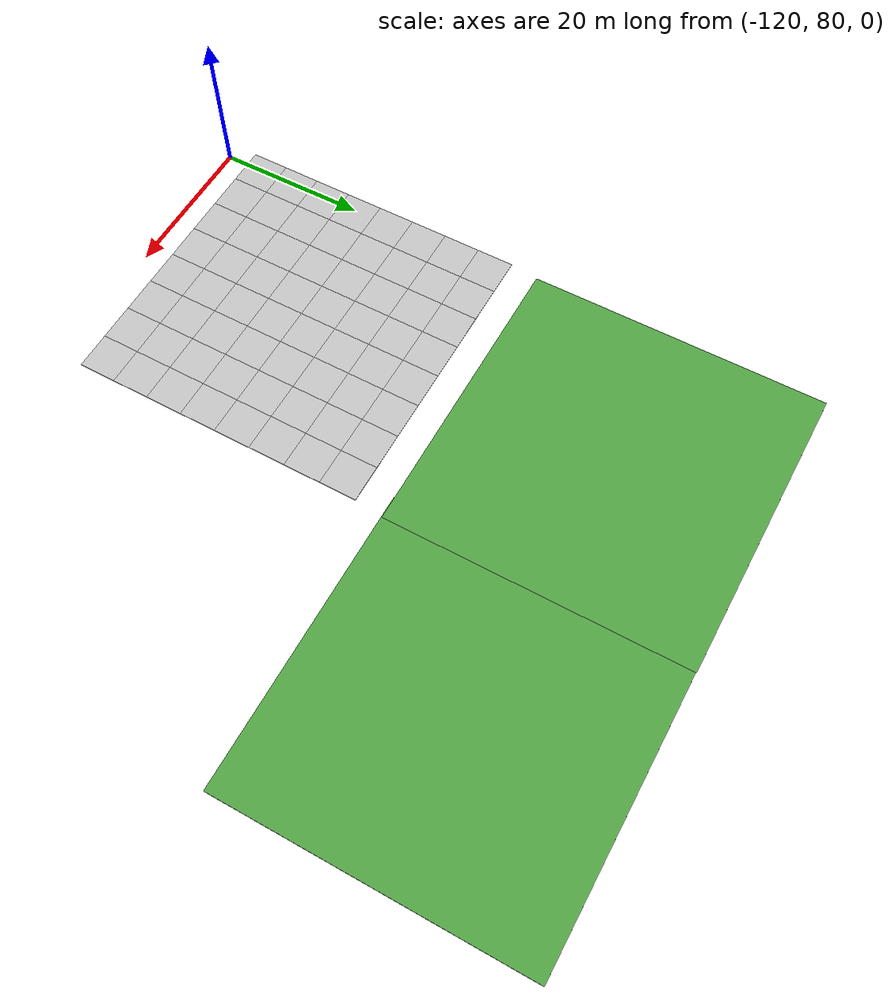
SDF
<sdf version="1.7">
 <world name="default">
  <model name="mud_plane_40x40_15">
   <model name="mud_plane_20x20">
    <model name="mud_plane">
     <static>1</static>
     <link name="link">
      <collision name="collision"><geometry><box><size>10 10 0.1</size></box></geometry></collision>
      <visual name="visual_1">
       <pose>-2.5 2.5 -0.05 0 -0 0</pose>
       <cast_shadows>0</cast_shadows>
       <geometry><box><size>5 5 0.1</size></box></geometry>
       <material>
        <script>
         <uri>model://mud_plane/materials/scripts</uri>
         <uri>model://mud_plane/materials/textures</uri>
         <name>vrc/mud</name>
        </script>
       </material>
      </visual>
      <visual name="visual_2">
       <pose>2.5 2.5 -0.05 0 -0 0</pose>
       <cast_shadows>0</cast_shadows>
       <geometry><box><size>5 5 0.1</size></box></geometry>
       <material>
        <script>
         <uri>model://mud_plane/materials/scripts</uri>
         <uri>model://mud_plane/materials/textures</uri>
         <name>vrc/mud</name>
        </script>
       </material>
      </visual>
      <visual name="visual_3">
       <pose>2.5 -2.5 -0.05 0 -0 0</pose>
       <cast_shadows>0</cast_shadows>
       <geometry><box><size>5 5 0.1</size></box></geometry>
       <material>
        <script>
         <uri>model://mud_plane/materials/scripts</uri>
         <uri>model://mud_plane/materials/textures</uri>
         <name>vrc/mud</name>
        </script>
       </material>
      </visual>
      <visual name="visual_4">
       <pose>-2.5 -2.5 -0.05 0 -0 0</pose>
       <cast_shadows>0</cast_shadows>
       <geometry><box><size>5 5 0.1</size></box></geometry>
       <material>
        <script>
         <uri>model://mud_plane/materials/scripts</uri>
         <uri>model://mud_plane/materials/textures</uri>
         <name>vrc/mud</name>
        </script>
       </material>
      </visual>
     </link>
     <pose>-4.99986 -4.99991 0 0 -0 0</pose>
    </model>
    <model name="mud_plane_0">
     <static>1</static>
     <link name="link">
      <collision name="collision"><geometry><box><size>10 10 0.1</size></box></geometry></collision>
      <visual name="visual_1">
       <pose>-2.5 2.5 -0.05 0 -0 0</pose>
       <cast_shadows>0</cast_shadows>
       <geometry><box><size>5 5 0.1</size></box></geometry>
       <material>
        <script>
         <uri>model://mud_plane/materials/scripts</uri>
         <uri>model://mud_plane/materials/textures</uri>
         <name>vrc/mud</name>
        </script>
       </material>
      </visual>
      <visual name="visual_2">
       <pose>2.5 2.5 -0.05 0 -0 0</pose>
       <cast_shadows>0</cast_shadows>
       <geometry><box><size>5 5 0.1</size></box></geometry>
       <material>
        <script>
         <uri>model://mud_plane/materials/scripts</uri>
         <uri>model://mud_plane/materials/textures</uri>
         <name>vrc/mud</name>
        </script>
       </material>
      </visual>
      <visual name="visual_3">
       <pose>2.5 -2.5 -0.05 0 -0 0</pose>
       <cast_shadows>0</cast_shadows>
       <geometry><box><size>5 5 0.1</size></box></geometry>
       <material>
        <script>
         <uri>model://mud_plane/materials/scripts</uri>
         <uri>model://mud_plane/materials/textures</uri>
         <name>vrc/mud</name>
        </script>
       </material>
      </visual>
      <visual name="visual_4">
       <pose>-2.5 -2.5 -0.05 0 -0 0</pose>
       <cast_shadows>0</cast_shadows>
       <geometry><box><size>5 5 0.1</size></box></geometry>
       <material>
        <script>
         <uri>model://mud_plane/materials/scripts</uri>
         <uri>model://mud_plane/materials/textures</uri>
         <name>vrc/mud</name>
        </script>
       </material>
      </visual>
     </link>
     <pose>-4.99946 4.99954 0 0 -0 0</pose>
    </model>
    <model name="mud_plane_1">
     <static>1</static>
     <link name="link">
      <collision name="collision"><geometry><box><size>10 10 0.1</size></box></geometry></collision>
      <visual name="visual_1">
       <pose>-2.5 2.5 -0.05 0 -0 0</pose>
       <cast_shadows>0</cast_shadows>
       <geometry><box><size>5 5 0.1</size></box></geometry>
       <material>
        <script>
         <uri>model://mud_plane/materials/scripts</uri>
         <uri>model://mud_plane/materials/textures</uri>
         <name>vrc/mud</name>
        </script>
       </material>
      </visual>
      <visual name="visual_2">
       <pose>2.5 2.5 -0.05 0 -0 0</pose>
       <cast_shadows>0</cast_shadows>
       <geometry><box><size>5 5 0.1</size></box></geometry>
       <material>
        <script>
         <uri>model://mud_plane/materials/scripts</uri>
         <uri>model://mud_plane/materials/textures</uri>
         <name>vrc/mud</name>
        </script>
       </material>
      </visual>
      <visual name="visual_3">
       <pose>2.5 -2.5 -0.05 0 -0 0</pose>
       <cast_shadows>0</cast_shadows>
       <geometry><box><size>5 5 0.1</size></box></geometry>
       <material>
        <script>
         <uri>model://mud_plane/materials/scripts</uri>
         <uri>model://mud_plane/materials/textures</uri>
         <name>vrc/mud</name>
        </script>
       </material>
      </visual>
      <visual name="visual_4">
       <pose>-2.5 -2.5 -0.05 0 -0 0</pose>
       <cast_shadows>0</cast_shadows>
       <geometry><box><size>5 5 0.1</size></box></geometry>
       <material>
        <script>
         <uri>model://mud_plane/materials/scripts</uri>
         <uri>model://mud_plane/materials/textures</uri>
         <name>vrc/mud</name>
        </script>
       </material>
      </visual>
     </link>
     <pose>4.99964 -4.99949 0 0 -0 0</pose>
    </model>
    <model name="mud_plane_2">
     <static>1</static>
     <link name="link">
      <collision name="collision"><geometry><box><size>10 10 0.1</size></box></geometry></collision>
      <visual name="visual_1">
       <pose>-2.5 2.5 -0.05 0 -0 0</pose>
       <cast_shadows>0</cast_shadows>
       <geometry><box><size>5 5 0.1</size></box></geometry>
       <material>
        <script>
         <uri>model://mud_plane/materials/scripts</uri>
         <uri>model://mud_plane/materials/textures</uri>
         <name>vrc/mud</name>
        </script>
       </material>
      </visual>
      <visual name="visual_2">
       <pose>2.5 2.5 -0.05 0 -0 0</pose>
       <cast_shadows>0</cast_shadows>
       <geometry><box><size>5 5 0.1</size></box></geometry>
       <material>
        <script>
         <uri>model://mud_plane/materials/scripts</uri>
         <uri>model://mud_plane/materials/textures</uri>
         <name>vrc/mud</name>
        </script>
       </material>
      </visual>
      <visual name="visual_3">
       <pose>2.5 -2.5 -0.05 0 -0 0</pose>
       <cast_shadows>0</cast_shadows>
       <geometry><box><size>5 5 0.1</size></box></geometry>
       <material>
        <script>
         <uri>model://mud_plane/materials/scripts</uri>
         <uri>model://mud_plane/materials/textures</uri>
         <name>vrc/mud</name>
        </script>
       </material>
      </visual>
      <visual name="visual_4">
       <pose>-2.5 -2.5 -0.05 0 -0 0</pose>
       <cast_shadows>0</cast_shadows>
       <geometry><box><size>5 5 0.1</size></box></geometry>
       <material>
        <script>
         <uri>model://mud_plane/materials/scripts</uri>
         <uri>model://mud_plane/materials/textures</uri>
         <name>vrc/mud</name>
        </script>
       </material>
      </visual>
     </link>
     <pose>4.99967 4.99986 0 0 -0 0</pose>
    </model>
    <static>0</static>
    <pose>-9.99895 9.99843 0 0 -0 0</pose>
   </model>
   <model name="mud_plane_20x20_0">
    <model name="mud_plane">
     <static>1</static>
     <link name="link">
      <collision name="collision"><geometry><box><size>10 10 0.1</size></box></geometry></collision>
      <visual name="visual_1">
       <pose>-2.5 2.5 -0.05 0 -0 0</pose>
       <cast_shadows>0</cast_shadows>
       <geometry><box><size>5 5 0.1</size></box></geometry>
       <material>
        <script>
         <uri>model://mud_plane/materials/scripts</uri>
         <uri>model://mud_plane/materials/textures</uri>
         <name>vrc/mud</name>
        </script>
       </material>
      </visual>
      <visual name="visual_2">
       <pose>2.5 2.5 -0.05 0 -0 0</pose>
       <cast_shadows>0</cast_shadows>
       <geometry><box><size>5 5 0.1</size></box></geometry>
       <material>
        <script>
         <uri>model://mud_plane/materials/scripts</uri>
         <uri>model://mud_plane/materials/textures</uri>
         <name>vrc/mud</name>
        </script>
       </material>
      </visual>
      <visual name="visual_3">
       <pose>2.5 -2.5 -0.05 0 -0 0</pose>
       <cast_shadows>0</cast_shadows>
       <geometry><box><size>5 5 0.1</size></box></geometry>
       <material>
        <script>
         <uri>model://mud_plane/materials/scripts</uri>
         <uri>model://mud_plane/materials/textures</uri>
         <name>vrc/mud</name>
        </script>
       </material>
      </visual>
      <visual name="visual_4">
       <pose>-2.5 -2.5 -0.05 0 -0 0</pose>
       <cast_shadows>0</cast_shadows>
       <geometry><box><size>5 5 0.1</size></box></geometry>
       <material>
        <script>
         <uri>model://mud_plane/materials/scripts</uri>
         <uri>model://mud_plane/materials/textures</uri>
         <name>vrc/mud</name>
        </script>
       </material>
      </visual>
     </link>
     <pose>-4.99986 -4.99991 0 0 -0 0</pose>
    </model>
    <model name="mud_plane_0">
     <static>1</static>
     <link name="link">
      <collision name="collision"><geometry><box><size>10 10 0.1</size></box></geometry></collision>
      <visual name="visual_1">
       <pose>-2.5 2.5 -0.05 0 -0 0</pose>
       <cast_shadows>0</cast_shadows>
       <geometry><box><size>5 5 0.1</size></box></geometry>
       <material>
        <script>
         <uri>model://mud_plane/materials/scripts</uri>
         <uri>model://mud_plane/materials/textures</uri>
         <name>vrc/mud</name>
        </script>
       </material>
      </visual>
      <visual name="visual_2">
       <pose>2.5 2.5 -0.05 0 -0 0</pose>
       <cast_shadows>0</cast_shadows>
       <geometry><box><size>5 5 0.1</size></box></geometry>
       <material>
        <script>
         <uri>model://mud_plane/materials/scripts</uri>
         <uri>model://mud_plane/materials/textures</uri>
         <name>vrc/mud</name>
        </script>
       </material>
      </visual>
      <visual name="visual_3">
       <pose>2.5 -2.5 -0.05 0 -0 0</pose>
       <cast_shadows>0</cast_shadows>
       <geometry><box><size>5 5 0.1</size></box></geometry>
       <material>
        <script>
         <uri>model://mud_plane/materials/scripts</uri>
         <uri>model://mud_plane/materials/textures</uri>
         <name>vrc/mud</name>
        </script>
       </material>
      </visual>
      <visual name="visual_4">
       <pose>-2.5 -2.5 -0.05 0 -0 0</pose>
       <cast_shadows>0</cast_shadows>
       <geometry><box><size>5 5 0.1</size></box></geometry>
       <material>
        <script>
         <uri>model://mud_plane/materials/scripts</uri>
         <uri>model://mud_plane/materials/textures</uri>
         <name>vrc/mud</name>
        </script>
       </material>
      </visual>
     </link>
     <pose>-4.99946 4.99954 0 0 -0 0</pose>
    </model>
    <model name="mud_plane_1">
     <static>1</static>
     <link name="link">
      <collision name="collision"><geometry><box><size>10 10 0.1</size></box></geometry></collision>
      <visual name="visual_1">
       <pose>-2.5 2.5 -0.05 0 -0 0</pose>
       <cast_shadows>0</cast_shadows>
       <geometry><box><size>5 5 0.1</size></box></geometry>
       <material>
        <script>
         <uri>model://mud_plane/materials/scripts</uri>
         <uri>model://mud_plane/materials/textures</uri>
         <name>vrc/mud</name>
        </script>
       </material>
      </visual>
      <visual name="visual_2">
       <pose>2.5 2.5 -0.05 0 -0 0</pose>
       <cast_shadows>0</cast_shadows>
       <geometry><box><size>5 5 0.1</size></box></geometry>
       <material>
        <script>
         <uri>model://mud_plane/materials/scripts</uri>
         <uri>model://mud_plane/materials/textures</uri>
         <name>vrc/mud</name>
        </script>
       </material>
      </visual>
      <visual name="visual_3">
       <pose>2.5 -2.5 -0.05 0 -0 0</pose>
       <cast_shadows>0</cast_shadows>
       <geometry><box><size>5 5 0.1</size></box></geometry>
       <material>
        <script>
         <uri>model://mud_plane/materials/scripts</uri>
         <uri>model://mud_plane/materials/textures</uri>
         <name>vrc/mud</name>
        </script>
       </material>
      </visual>
      <visual name="visual_4">
       <pose>-2.5 -2.5 -0.05 0 -0 0</pose>
       <cast_shadows>0</cast_shadows>
       <geometry><box><size>5 5 0.1</size></box></geometry>
       <material>
        <script>
         <uri>model://mud_plane/materials/scripts</uri>
         <uri>model://mud_plane/materials/textures</uri>
         <name>vrc/mud</name>
        </script>
       </material>
      </visual>
     </link>
     <pose>4.99964 -4.99949 0 0 -0 0</pose>
    </model>
    <model name="mud_plane_2">
     <static>1</static>
     <link name="link">
      <collision name="collision"><geometry><box><size>10 10 0.1</size></box></geometry></collision>
      <visual name="visual_1">
       <pose>-2.5 2.5 -0.05 0 -0 0</pose>
       <cast_shadows>0</cast_shadows>
       <geometry><box><size>5 5 0.1</size></box></geometry>
       <material>
        <script>
         <uri>model://mud_plane/materials/scripts</uri>
         <uri>model://mud_plane/materials/textures</uri>
         <name>vrc/mud</name>
        </script>
       </material>
      </visual>
      <visual name="visual_2">
       <pose>2.5 2.5 -0.05 0 -0 0</pose>
       <cast_shadows>0</cast_shadows>
       <geometry><box><size>5 5 0.1</size></box></geometry>
       <material>
        <script>
         <uri>model://mud_plane/materials/scripts</uri>
         <uri>model://mud_plane/materials/textures</uri>
         <name>vrc/mud</name>
        </script>
       </material>
      </visual>
      <visual name="visual_3">
       <pose>2.5 -2.5 -0.05 0 -0 0</pose>
       <cast_shadows>0</cast_shadows>
       <geometry><box><size>5 5 0.1</size></box></geometry>
       <material>
        <script>
         <uri>model://mud_plane/materials/scripts</uri>
         <uri>model://mud_plane/materials/textures</uri>
         <name>vrc/mud</name>
        </script>
       </material>
      </visual>
      <visual name="visual_4">
       <pose>-2.5 -2.5 -0.05 0 -0 0</pose>
       <cast_shadows>0</cast_shadows>
       <geometry><box><size>5 5 0.1</size></box></geometry>
       <material>
        <script>
         <uri>model://mud_plane/materials/scripts</uri>
         <uri>model://mud_plane/materials/textures</uri>
         <name>vrc/mud</name>
        </script>
       </material>
      </visual>
     </link>
     <pose>4.99967 4.99986 0 0 -0 0</pose>
    </model>
    <static>0</static>
    <pose>9.99933 9.9997 0 0 -0 0</pose>
   </model>
   <model name="mud_plane_20x20_1">
    <model name="mud_plane">
     <static>1</static>
     <link name="link">
      <collision name="collision"><geometry><box><size>10 10 0.1</size></box></geometry></collision>
      <visual name="visual_1">
       <pose>-2.5 2.5 -0.05 0 -0 0</pose>
       <cast_shadows>0</cast_shadows>
       <geometry><box><size>5 5 0.1</size></box></geometry>
       <material>
        <script>
         <uri>model://mud_plane/materials/scripts</uri>
         <uri>model://mud_plane/materials/textures</uri>
         <name>vrc/mud</name>
        </script>
       </material>
      </visual>
      <visual name="visual_2">
       <pose>2.5 2.5 -0.05 0 -0 0</pose>
       <cast_shadows>0</cast_shadows>
       <geometry><box><size>5 5 0.1</size></box></geometry>
       <material>
        <script>
         <uri>model://mud_plane/materials/scripts</uri>
         <uri>model://mud_plane/materials/textures</uri>
         <name>vrc/mud</name>
        </script>
       </material>
      </visual>
      <visual name="visual_3">
       <pose>2.5 -2.5 -0.05 0 -0 0</pose>
       <cast_shadows>0</cast_shadows>
       <geometry><box><size>5 5 0.1</size></box></geometry>
       <material>
        <script>
         <uri>model://mud_plane/materials/scripts</uri>
         <uri>model://mud_plane/materials/textures</uri>
         <name>vrc/mud</name>
        </script>
       </material>
      </visual>
      <visual name="visual_4">
       <pose>-2.5 -2.5 -0.05 0 -0 0</pose>
       <cast_shadows>0</cast_shadows>
       <geometry><box><size>5 5 0.1</size></box></geometry>
       <material>
        <script>
         <uri>model://mud_plane/materials/scripts</uri>
         <uri>model://mud_plane/materials/textures</uri>
         <name>vrc/mud</name>
        </script>
       </material>
      </visual>
     </link>
     <pose>-4.99986 -4.99991 0 0 -0 0</pose>
    </model>
    <model name="mud_plane_0">
     <static>1</static>
     <link name="link">
      <collision name="collision"><geometry><box><size>10 10 0.1</size></box></geometry></collision>
      <visual name="visual_1">
       <pose>-2.5 2.5 -0.05 0 -0 0</pose>
       <cast_shadows>0</cast_shadows>
       <geometry><box><size>5 5 0.1</size></box></geometry>
       <material>
        <script>
         <uri>model://mud_plane/materials/scripts</uri>
         <uri>model://mud_plane/materials/textures</uri>
         <name>vrc/mud</name>
        </script>
       </material>
      </visual>
      <visual name="visual_2">
       <pose>2.5 2.5 -0.05 0 -0 0</pose>
       <cast_shadows>0</cast_shadows>
       <geometry><box><size>5 5 0.1</size></box></geometry>
       <material>
        <script>
         <uri>model://mud_plane/materials/scripts</uri>
         <uri>model://mud_plane/materials/textures</uri>
         <name>vrc/mud</name>
        </script>
       </material>
      </visual>
      <visual name="visual_3">
       <pose>2.5 -2.5 -0.05 0 -0 0</pose>
       <cast_shadows>0</cast_shadows>
       <geometry><box><size>5 5 0.1</size></box></geometry>
       <material>
        <script>
         <uri>model://mud_plane/materials/scripts</uri>
         <uri>model://mud_plane/materials/textures</uri>
         <name>vrc/mud</name>
        </script>
       </material>
      </visual>
      <visual name="visual_4">
       <pose>-2.5 -2.5 -0.05 0 -0 0</pose>
       <cast_shadows>0</cast_shadows>
       <geometry><box><size>5 5 0.1</size></box></geometry>
       <material>
        <script>
         <uri>model://mud_plane/materials/scripts</uri>
         <uri>model://mud_plane/materials/textures</uri>
         <name>vrc/mud</name>
        </script>
       </material>
      </visual>
     </link>
     <pose>-4.99946 4.99954 0 0 -0 0</pose>
    </model>
    <model name="mud_plane_1">
     <static>1</static>
     <link name="link">
      <collision name="collision"><geometry><box><size>10 10 0.1</size></box></geometry></collision>
      <visual name="visual_1">
       <pose>-2.5 2.5 -0.05 0 -0 0</pose>
       <cast_shadows>0</cast_shadows>
       <geometry><box><size>5 5 0.1</size></box></geometry>
       <material>
        <script>
         <uri>model://mud_plane/materials/scripts</uri>
         <uri>model://mud_plane/materials/textures</uri>
         <name>vrc/mud</name>
        </script>
       </material>
      </visual>
      <visual name="visual_2">
       <pose>2.5 2.5 -0.05 0 -0 0</pose>
       <cast_shadows>0</cast_shadows>
       <geometry><box><size>5 5 0.1</size></box></geometry>
       <material>
        <script>
         <uri>model://mud_plane/materials/scripts</uri>
         <uri>model://mud_plane/materials/textures</uri>
         <name>vrc/mud</name>
        </script>
       </material>
      </visual>
      <visual name="visual_3">
       <pose>2.5 -2.5 -0.05 0 -0 0</pose>
       <cast_shadows>0</cast_shadows>
       <geometry><box><size>5 5 0.1</size></box></geometry>
       <material>
        <script>
         <uri>model://mud_plane/materials/scripts</uri>
         <uri>model://mud_plane/materials/textures</uri>
         <name>vrc/mud</name>
        </script>
       </material>
      </visual>
      <visual name="visual_4">
       <pose>-2.5 -2.5 -0.05 0 -0 0</pose>
       <cast_shadows>0</cast_shadows>
       <geometry><box><size>5 5 0.1</size></box></geometry>
       <material>
        <script>
         <uri>model://mud_plane/materials/scripts</uri>
         <uri>model://mud_plane/materials/textures</uri>
         <name>vrc/mud</name>
        </script>
       </material>
      </visual>
     </link>
     <pose>4.99964 -4.99949 0 0 -0 0</pose>
    </model>
    <model name="mud_plane_2">
     <static>1</static>
     <link name="link">
      <collision name="collision"><geometry><box><size>10 10 0.1</size></box></geometry></collision>
      <visual name="visual_1">
       <pose>-2.5 2.5 -0.05 0 -0 0</pose>
       <cast_shadows>0</cast_shadows>
       <geometry><box><size>5 5 0.1</size></box></geometry>
       <material>
        <script>
         <uri>model://mud_plane/materials/scripts</uri>
         <uri>model://mud_plane/materials/textures</uri>
         <name>vrc/mud</name>
        </script>
       </material>
      </visual>
      <visual name="visual_2">
       <pose>2.5 2.5 -0.05 0 -0 0</pose>
       <cast_shadows>0</cast_shadows>
       <geometry><box><size>5 5 0.1</size></box></geometry>
       <material>
        <script>
         <uri>model://mud_plane/materials/scripts</uri>
         <uri>model://mud_plane/materials/textures</uri>
         <name>vrc/mud</name>
        </script>
       </material>
      </visual>
      <visual name="visual_3">
       <pose>2.5 -2.5 -0.05 0 -0 0</pose>
       <cast_shadows>0</cast_shadows>
       <geometry><box><size>5 5 0.1</size></box></geometry>
       <material>
        <script>
         <uri>model://mud_plane/materials/scripts</uri>
         <uri>model://mud_plane/materials/textures</uri>
         <name>vrc/mud</name>
        </script>
       </material>
      </visual>
      <visual name="visual_4">
       <pose>-2.5 -2.5 -0.05 0 -0 0</pose>
       <cast_shadows>0</cast_shadows>
       <geometry><box><size>5 5 0.1</size></box></geometry>
       <material>
        <script>
         <uri>model://mud_plane/materials/scripts</uri>
         <uri>model://mud_plane/materials/textures</uri>
         <name>vrc/mud</name>
        </script>
       </material>
      </visual>
     </link>
     <pose>4.99967 4.99986 0 0 -0 0</pose>
    </model>
    <static>0</static>
    <pose>9.9993 -9.99877 0 0 -0 0</pose>
   </model>
   <model name="mud_plane_20x20_2">
    <model name="mud_plane">
     <static>1</static>
     <link name="link">
      <collision name="collision"><geometry><box><size>10 10 0.1</size></box></geometry></collision>
      <visual name="visual_1">
       <pose>-2.5 2.5 -0.05 0 -0 0</pose>
       <cast_shadows>0</cast_shadows>
       <geometry><box><size>5 5 0.1</size></box></geometry>
       <material>
        <script>
         <uri>model://mud_plane/materials/scripts</uri>
         <uri>model://mud_plane/materials/textures</uri>
         <name>vrc/mud</name>
        </script>
       </material>
      </visual>
      <visual name="visual_2">
       <pose>2.5 2.5 -0.05 0 -0 0</pose>
       <cast_shadows>0</cast_shadows>
       <geometry><box><size>5 5 0.1</size></box></geometry>
       <material>
        <script>
         <uri>model://mud_plane/materials/scripts</uri>
         <uri>model://mud_plane/materials/textures</uri>
         <name>vrc/mud</name>
        </script>
       </material>
      </visual>
      <visual name="visual_3">
       <pose>2.5 -2.5 -0.05 0 -0 0</pose>
       <cast_shadows>0</cast_shadows>
       <geometry><box><size>5 5 0.1</size></box></geometry>
       <material>
        <script>
         <uri>model://mud_plane/materials/scripts</uri>
         <uri>model://mud_plane/materials/textures</uri>
         <name>vrc/mud</name>
        </script>
       </material>
      </visual>
      <visual name="visual_4">
       <pose>-2.5 -2.5 -0.05 0 -0 0</pose>
       <cast_shadows>0</cast_shadows>
       <geometry><box><size>5 5 0.1</size></box></geometry>
       <material>
        <script>
         <uri>model://mud_plane/materials/scripts</uri>
         <uri>model://mud_plane/materials/textures</uri>
         <name>vrc/mud</name>
        </script>
       </material>
      </visual>
     </link>
     <pose>-4.99986 -4.99991 0 0 -0 0</pose>
    </model>
    <model name="mud_plane_0">
     <static>1</static>
     <link name="link">
      <collision name="collision"><geometry><box><size>10 10 0.1</size></box></geometry></collision>
      <visual name="visual_1">
       <pose>-2.5 2.5 -0.05 0 -0 0</pose>
       <cast_shadows>0</cast_shadows>
       <geometry><box><size>5 5 0.1</size></box></geometry>
       <material>
        <script>
         <uri>model://mud_plane/materials/scripts</uri>
         <uri>model://mud_plane/materials/textures</uri>
         <name>vrc/mud</name>
        </script>
       </material>
      </visual>
      <visual name="visual_2">
       <pose>2.5 2.5 -0.05 0 -0 0</pose>
       <cast_shadows>0</cast_shadows>
       <geometry><box><size>5 5 0.1</size></box></geometry>
       <material>
        <script>
         <uri>model://mud_plane/materials/scripts</uri>
         <uri>model://mud_plane/materials/textures</uri>
         <name>vrc/mud</name>
        </script>
       </material>
      </visual>
      <visual name="visual_3">
       <pose>2.5 -2.5 -0.05 0 -0 0</pose>
       <cast_shadows>0</cast_shadows>
       <geometry><box><size>5 5 0.1</size></box></geometry>
       <material>
        <script>
         <uri>model://mud_plane/materials/scripts</uri>
         <uri>model://mud_plane/materials/textures</uri>
         <name>vrc/mud</name>
        </script>
       </material>
      </visual>
      <visual name="visual_4">
       <pose>-2.5 -2.5 -0.05 0 -0 0</pose>
       <cast_shadows>0</cast_shadows>
       <geometry><box><size>5 5 0.1</size></box></geometry>
       <material>
        <script>
         <uri>model://mud_plane/materials/scripts</uri>
         <uri>model://mud_plane/materials/textures</uri>
         <name>vrc/mud</name>
        </script>
       </material>
      </visual>
     </link>
     <pose>-4.99946 4.99954 0 0 -0 0</pose>
    </model>
    <model name="mud_plane_1">
     <static>1</static>
     <link name="link">
      <collision name="collision"><geometry><box><size>10 10 0.1</size></box></geometry></collision>
      <visual name="visual_1">
       <pose>-2.5 2.5 -0.05 0 -0 0</pose>
       <cast_shadows>0</cast_shadows>
       <geometry><box><size>5 5 0.1</size></box></geometry>
       <material>
        <script>
         <uri>model://mud_plane/materials/scripts</uri>
         <uri>model://mud_plane/materials/textures</uri>
         <name>vrc/mud</name>
        </script>
       </material>
      </visual>
      <visual name="visual_2">
       <pose>2.5 2.5 -0.05 0 -0 0</pose>
       <cast_shadows>0</cast_shadows>
       <geometry><box><size>5 5 0.1</size></box></geometry>
       <material>
        <script>
         <uri>model://mud_plane/materials/scripts</uri>
         <uri>model://mud_plane/materials/textures</uri>
         <name>vrc/mud</name>
        </script>
       </material>
      </visual>
      <visual name="visual_3">
       <pose>2.5 -2.5 -0.05 0 -0 0</pose>
       <cast_shadows>0</cast_shadows>
       <geometry><box><size>5 5 0.1</size></box></geometry>
       <material>
        <script>
         <uri>model://mud_plane/materials/scripts</uri>
         <uri>model://mud_plane/materials/textures</uri>
         <name>vrc/mud</name>
        </script>
       </material>
      </visual>
      <visual name="visual_4">
       <pose>-2.5 -2.5 -0.05 0 -0 0</pose>
       <cast_shadows>0</cast_shadows>
       <geometry><box><size>5 5 0.1</size></box></geometry>
       <material>
        <script>
         <uri>model://mud_plane/materials/scripts</uri>
         <uri>model://mud_plane/materials/textures</uri>
         <name>vrc/mud</name>
        </script>
       </material>
      </visual>
     </link>
     <pose>4.99964 -4.99949 0 0 -0 0</pose>
    </model>
    <model name="mud_plane_2">
     <static>1</static>
     <link name="link">
      <collision name="collision"><geometry><box><size>10 10 0.1</size></box></geometry></collision>
      <visual name="visual_1">
       <pose>-2.5 2.5 -0.05 0 -0 0</pose>
       <cast_shadows>0</cast_shadows>
       <geometry><box><size>5 5 0.1</size></box></geometry>
       <material>
        <script>
         <uri>model://mud_plane/materials/scripts</uri>
         <uri>model://mud_plane/materials/textures</uri>
         <name>vrc/mud</name>
        </script>
       </material>
      </visual>
      <visual name="visual_2">
       <pose>2.5 2.5 -0.05 0 -0 0</pose>
       <cast_shadows>0</cast_shadows>
       <geometry><box><size>5 5 0.1</size></box></geometry>
       <material>
        <script>
         <uri>model://mud_plane/materials/scripts</uri>
         <uri>model://mud_plane/materials/textures</uri>
         <name>vrc/mud</name>
        </script>
       </material>
      </visual>
      <visual name="visual_3">
       <pose>2.5 -2.5 -0.05 0 -0 0</pose>
       <cast_shadows>0</cast_shadows>
       <geometry><box><size>5 5 0.1</size></box></geometry>
       <material>
        <script>
         <uri>model://mud_plane/materials/scripts</uri>
         <uri>model://mud_plane/materials/textures</uri>
         <name>vrc/mud</name>
        </script>
       </material>
      </visual>
      <visual name="visual_4">
       <pose>-2.5 -2.5 -0.05 0 -0 0</pose>
       <cast_shadows>0</cast_shadows>
       <geometry><box><size>5 5 0.1</size></box></geometry>
       <material>
        <script>
         <uri>model://mud_plane/materials/scripts</uri>
         <uri>model://mud_plane/materials/textures</uri>
         <name>vrc/mud</name>
        </script>
       </material>
      </visual>
     </link>
     <pose>4.99967 4.99986 0 0 -0 0</pose>
    </model>
    <static>0</static>
    <pose>-9.99969 -9.99935 0 0 -0 0</pose>
   </model>
   <static>0</static>
   <pose>-102.062 102.779 0 0 -0 0</pose>
  </model>
  <model name="grass_plane_40x40_10">
   <pose>-64.6432 146.574 -0.05 0 -0 0</pose>
   <static>1</static>
   <link name="link">
    <collision name="collision"><geometry><box><size>40 40 0.1</size></box></geometry></collision>
    <visual name="grass">
     <cast_shadows>0</cast_shadows>
     <geometry><box><size>40 40 0.1</size></box></geometry>
     <material>
      <script><uri>file://media/materials/scripts/gazebo.material</uri><name>Gazebo/Grass</name></script>
     </material>
    </visual>
   </link>
  </model>
  <model name="grass_plane_40x40_11">
   <pose>-101.569 146.659 -0.05 0 -0 0</pose>
   <static>1</static>
   <link name="link">
    <collision name="collision"><geometry><box><size>40 40 0.1</size></box></geometry></collision>
    <visual name="grass">
     <cast_shadows>0</cast_shadows>
     <geometry><box><size>40 40 0.1</size></box></geometry>
     <material>
      <script><uri>file://media/materials/scripts/gazebo.material</uri><name>Gazebo/Grass</name></script>
     </material>
    </visual>
   </link>
  </model>
 </world>
</sdf>
